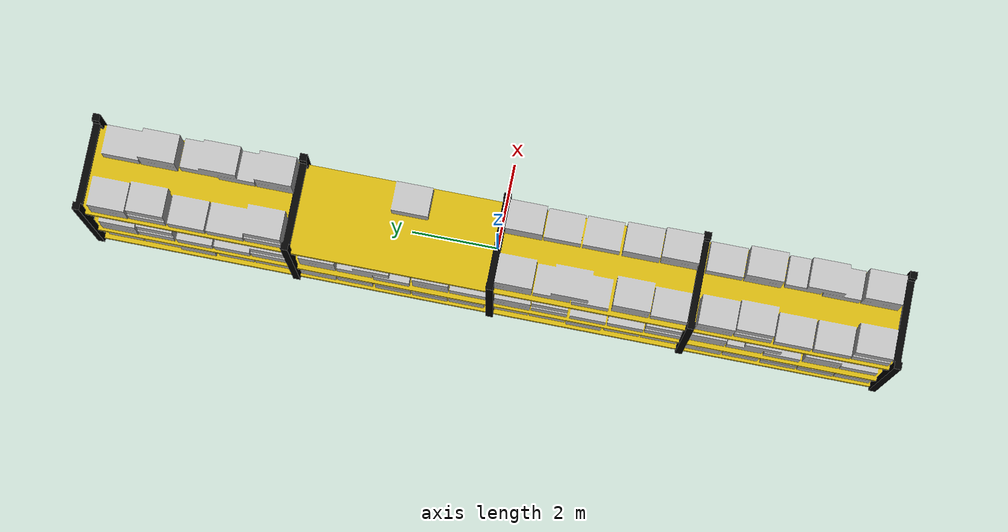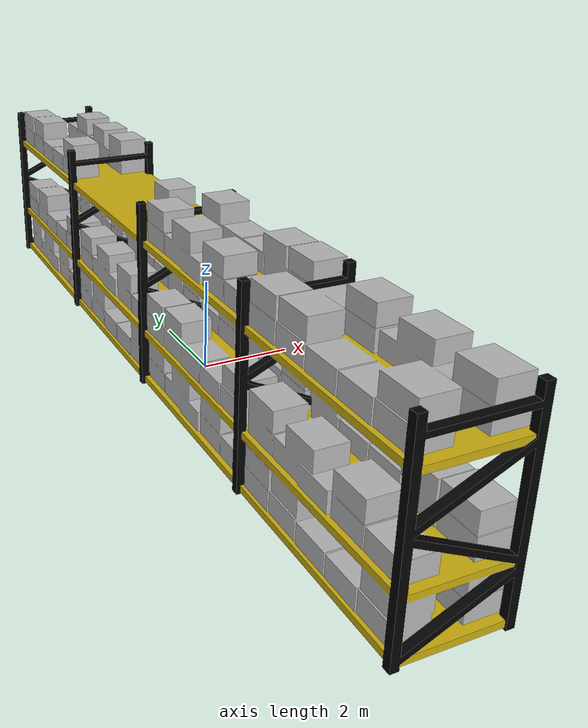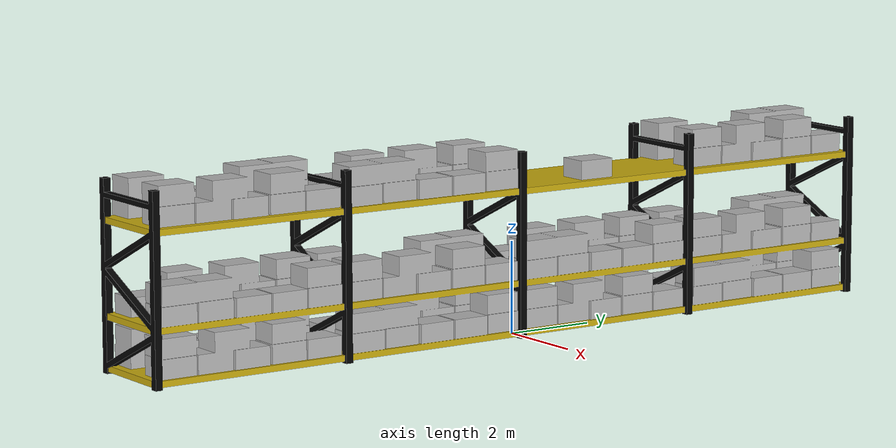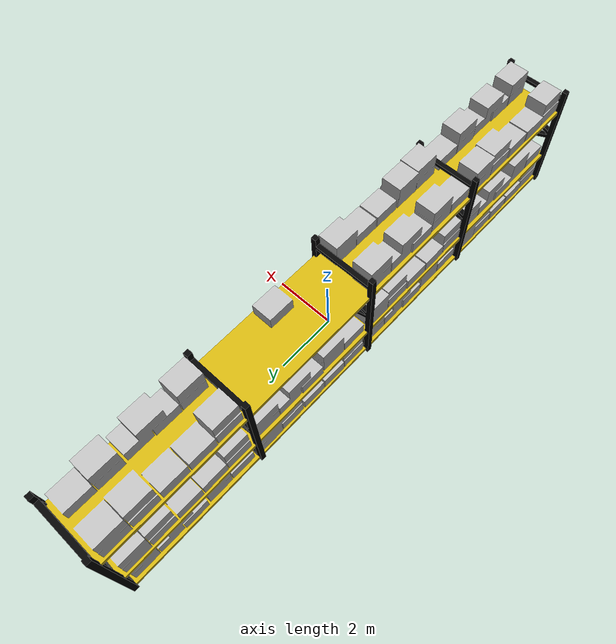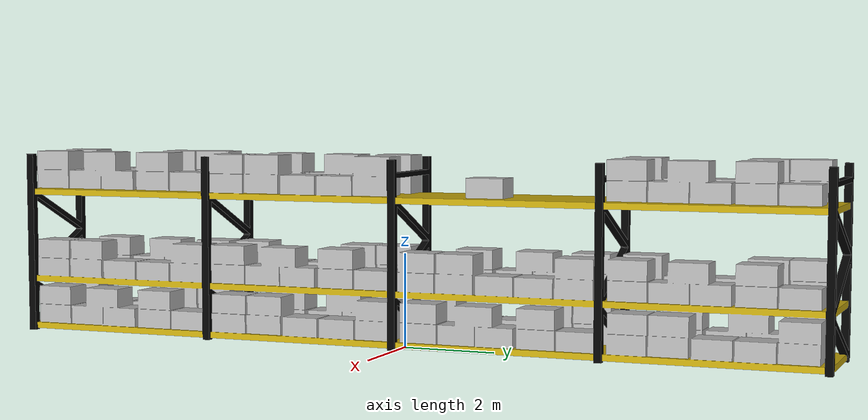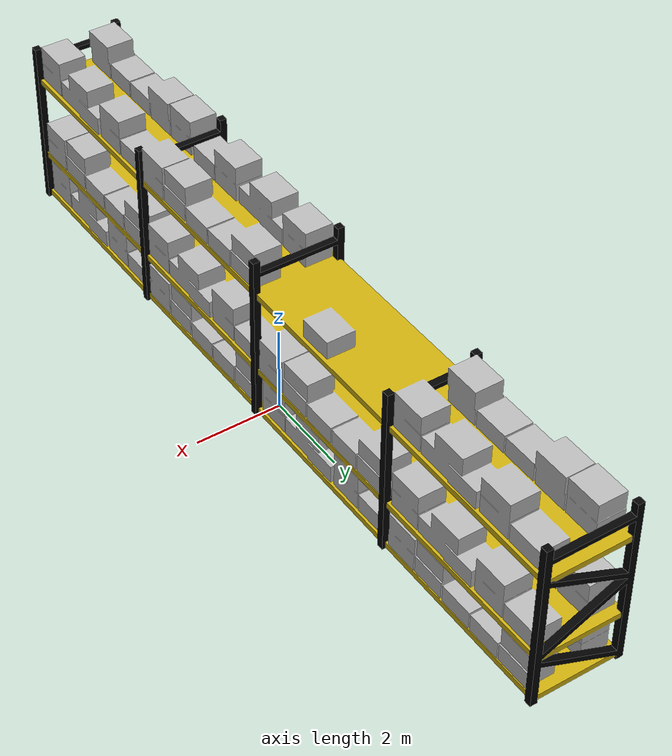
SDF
<?xml version='1.0'?>
<sdf version='1.7'>
  <model name='shelf_big'>
    <pose>0 0 0 0 0 0</pose>
    <self_collide>true</self_collide>
    <!-- BASE_LINK FRAME -->
    <link name='shelf_big_base'>
      <pose>-0.5 0 0 0 0 0</pose>
      <collision name='shelf_big_chassi_collision'>
        <pose>0 0 3 0 0 0</pose>
        <geometry>
          <box>
            <size>2.0 18 4.0</size>
          </box>
        </geometry>
      </collision>
      <visual name='shelf_big_chassi_visual'>
        <pose>0 0 0 0 0 1.57079632679</pose>
        <geometry>
          <mesh>
            <scale>1 1 1</scale>
            <uri>meshes/shelf.dae</uri>
          </mesh>
        </geometry>
      </visual>
    </link>
    <static>1</static>
  </model>
</sdf>
